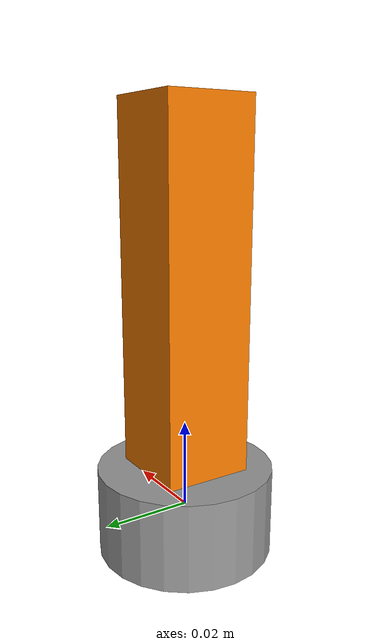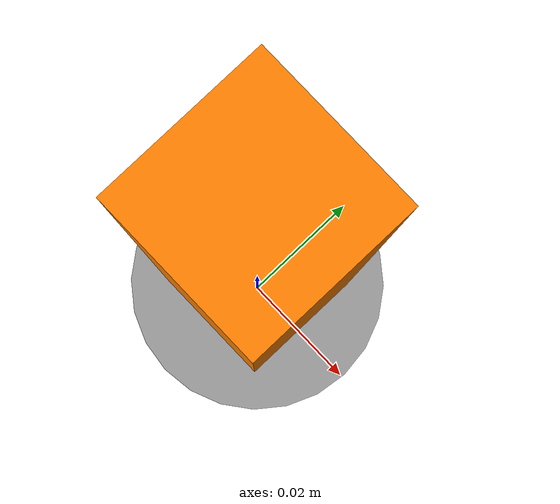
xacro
<?xml version="1.0"?>
<robot name="joint2_bringup" xmlns:xacro="http://www.ros.org/wiki/xacro">

  <!-- ============ Argumen (bisa dioverride dari launch file) ============ -->
  <xacro:arg name="port_name" default="/dev/ttyUSB0"/>
  <xacro:arg name="baud_rate" default="57600"/>
  <xacro:arg name="use_dummy" default="false"/>

  <!-- ============ Link dasar (dummy, sekedar biar TF valid) ============ -->
  <link name="base_link">
    <visual>
      <geometry><cylinder radius="0.02" length="0.02"/></geometry>
      <material name="grey"><color rgba="0.6 0.6 0.6 1"/></material>
    </visual>
    <collision>
      <geometry><cylinder radius="0.02" length="0.02"/></geometry>
    </collision>
    <inertial>
      <mass value="0.1"/>
      <inertia ixx="0.0001" ixy="0" ixz="0" iyy="0.0001" iyz="0" izz="0.0001"/>
    </inertial>
  </link>

  <link name="joint2_link">
    <visual>
      <origin xyz="0 0 0.04" rpy="0 0 0"/>
      <geometry><box size="0.02 0.02 0.08"/></geometry>
      <material name="orange"><color rgba="1.0 0.5 0.0 1"/></material>
    </visual>
    <collision>
      <origin xyz="0 0 0.04" rpy="0 0 0"/>
      <geometry><box size="0.02 0.02 0.08"/></geometry>
    </collision>
    <inertial>
      <origin xyz="0 0 0.04"/>
      <mass value="0.05"/>
      <inertia ixx="0.00005" ixy="0" ixz="0" iyy="0.00005" iyz="0" izz="0.00002"/>
    </inertial>
  </link>

  <!-- ============ Joint yang digerakkan oleh Dynamixel ID 2 ============ -->
  <!-- Nama joint HARUS sama persis dengan yang dipakai di controller yaml & script -->
  <joint name="joint2" type="revolute">
    <parent link="base_link"/>
    <child link="joint2_link"/>
    <origin xyz="0 0 0.01" rpy="0 0 0"/>
    <axis xyz="0 0 1"/>
    <!-- limit dalam radian, mengikuti range fisik motor (0 - 360 derajat) -->
    <limit lower="0.0" upper="6.2831853" effort="2.0" velocity="4.0"/>
  </joint>

  <!-- ============ ros2_control: hubungkan ke dynamixel_hardware_interface ============ -->
  <ros2_control name="joint2_system" type="system">
    <hardware>
      <xacro:if value="$(arg use_dummy)">
        <plugin>mock_components/GenericSystem</plugin>
      </xacro:if>
      <xacro:unless value="$(arg use_dummy)">
        <plugin>dynamixel_hardware_interface/DynamixelHardware</plugin>
        <param name="port_name">$(arg port_name)</param>
        <param name="baud_rate">$(arg baud_rate)</param>
        <param name="number_of_joints">1</param>
        <param name="number_of_transmissions">1</param>
        <param name="error_timeout_ms">500</param>
        <param name="dynamixel_model_folder">/param/dxl_model</param>
        <param name="transmission_to_joint_matrix">1</param>
        <param name="joint_to_transmission_matrix">1</param>
      </xacro:unless>
    </hardware>

    <joint name="joint2">
      <param name="id">2</param>
      <command_interface name="position"/>
      <state_interface name="position"/>
      <state_interface name="velocity"/>
      <state_interface name="effort"/>
    </joint>

    <xacro:unless value="$(arg use_dummy)">
      <gpio name="dxl2">
        <param name="type">dxl</param>
        <param name="ID">2</param>
        <command_interface name="Goal Position"/>
        <state_interface name="Present Position"/>
        <state_interface name="Present Velocity"/>
        <state_interface name="Present Current"/>
        <param name="Operating Mode">3</param>
        <param name="Position P Gain">800</param>
        <param name="Position I Gain">100</param>
        <param name="Position D Gain">100</param>
      </gpio>
    </xacro:unless>
  </ros2_control>

</robot>
